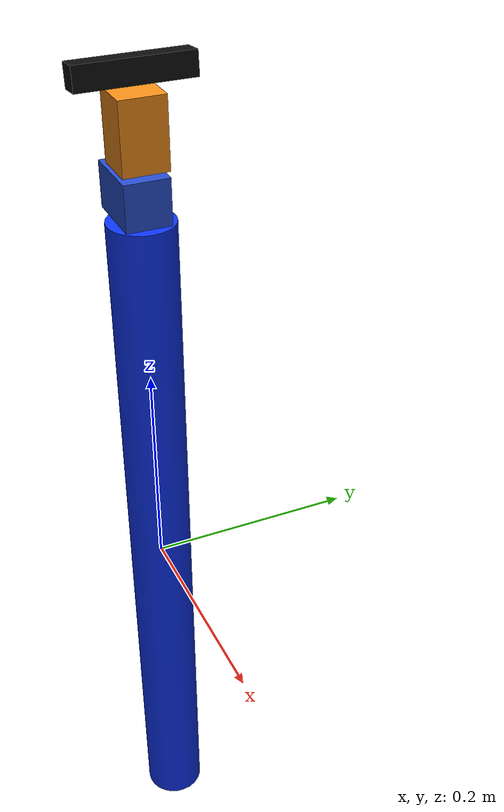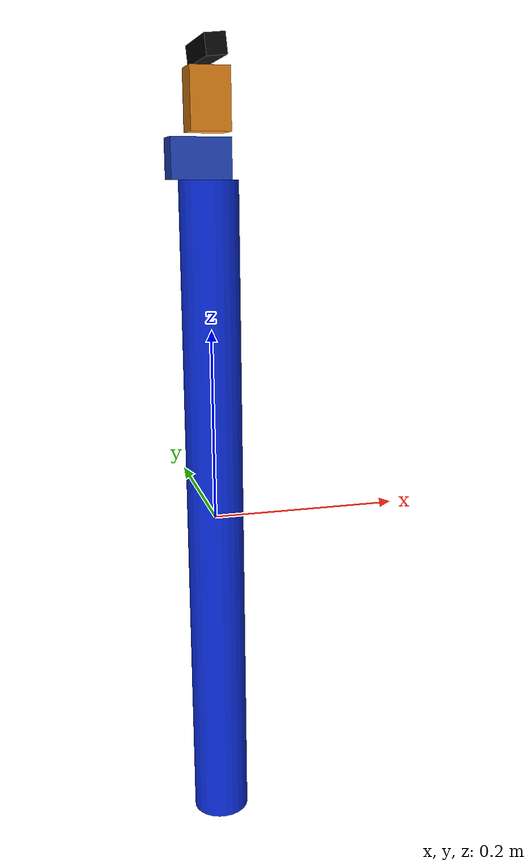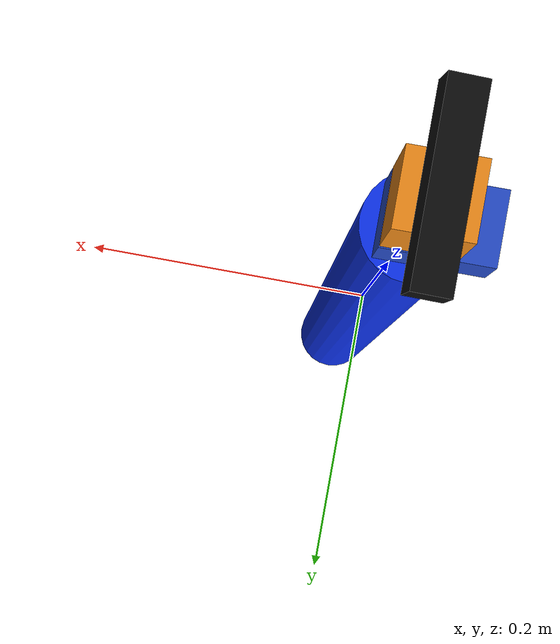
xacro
<?xml version="1.0"?>

<robot name="justina_upper" xmlns:xacro="http://www.ros.org/wiki/xacro">

  <xacro:property name="torso_radius" value="0.03"/>
  <xacro:property name="torso_height" value="0.7"/>
  <xacro:property name="torso_mass" value="1.0"/>
  <xacro:property name="torso_inertia_x" value="${1.0/12.0 * torso_mass * (3*torso_radius*torso_radius + torso_height*torso_height)}"/>
  <xacro:property name="torso_inertia_y" value="${1.0/12.0 * torso_mass * (3*torso_radius*torso_radius + torso_height*torso_height)}"/>
  <xacro:property name="torso_inertia_z" value="${1.0/2.0 * torso_mass * torso_radius * torso_radius}"/>

  <!-- Left Wheel -->
  <link name="torso_link">
    <visual>
      <origin xyz="0.0 0.0 0.0" rpy="0.0 0.0 0.0"/>
      <geometry>
        <cylinder radius="${torso_radius}" length="${torso_height}"/>
      </geometry>
      <material name="torso_material">
        <color rgba="0.05 0.2 0.95 1.0"/>
      </material>
    </visual>
    <collision>
      <origin xyz="0.0 0.0 0.0" rpy="0.0 0.0 0.0"/>
      <geometry>
        <cylinder radius="${torso_radius}" length="${torso_height}"/>
      </geometry>
    </collision>
    <inertial>
      <mass value="${torso_mass}"/>
      <inertia ixx="${torso_inertia_x}" ixy="0.0" ixz="0.0" iyy="${torso_inertia_y}" iyz="0" izz="${torso_inertia_z}"/>
      <origin xyz="0.0 0.0 0.0" rpy="0.0 0.0 0.0"/>
    </inertial>
  </link>

  <joint name="torso_head1" type="fixed">
    <origin xyz="0.0 0.0 0.34" rpy="0 0 0"/>
    <parent link="torso_link"/>
    <child link="head_link1"/>
  </joint>

  <link name="head_link1">
    <visual>
      <origin xyz= "-0.01 0 0.03" rpy="0 0 0"/>
      <geometry><box size="0.06 0.04 0.04"/></geometry>
      <material name="blue"/>
    </visual>
    <collision>
      <origin xyz= "-0.01 0 0.03" rpy="0 0 0"/>
      <geometry><box size="0.06 0.04 0.04"/></geometry>
    </collision>
    <inertial>
      <origin xyz="0.0 0 0.0" rpy = "0 0 0"/>
      <mass value = "0.15" />
      <inertia ixx = "0.00052" iyy = "0.00052" izz = "0.00004" ixy = "0" ixz = "0" iyz = "0" />
    </inertial>
  </link>

  <joint name="head_pan" type="revolute">
    <origin xyz="0.0 0 0.05" rpy="0 0 0" />
    <parent link="head_link1"/>
    <child link="head_link2"/>
    <axis xyz="0 0 1" />
    <dynamics damping ="0.1" />
    <limit effort="6.0" velocity="3.0" lower="-3.14" upper="3.14"/>
  </joint>

  <link name="head_link2">
    <visual>
      <origin xyz= "0.0 0 0.035" rpy="0 0 0"/>
      <geometry>
        <box size="0.04 0.04 0.06"/>
      </geometry>
      <material name="orange"/>
    </visual>
    <collision>
      <origin xyz= "0.0 0 0.035" rpy="0 0 0"/>
      <geometry>
        <box size = "0.04 0.04 0.06"/>
      </geometry>
    </collision>
    <inertial>
      <origin xyz="0.0 0 0.0" rpy = "0 0 0"/>
      <mass value = "0.15" />
      <inertia ixx = "0.00003125" iyy = "0.00003125" izz = "0.00003125" ixy = "0" ixz = "0" iyz = "0" />
    </inertial>
  </link>

  <joint name="head_tilt" type="revolute">
    <origin xyz="0.0 0 0.08" rpy="0 -0.1 0" />
    <parent link="head_link2"/>
    <child link="realsense_link"/>
    <axis xyz="0 1 0" />
    <dynamics damping ="0.1" />
    <limit effort="6.0" velocity="3.0" lower="-1.2" upper="1.0"/>
  </joint>

  <link name="realsense_link">
    <visual>
      <origin xyz="0.0 0.0 0.0" rpy="0.0 0.0 0.0"/>
      <geometry>
        <box size="0.02 0.1 0.02"/>
      </geometry>
      <material name="camera_material">
        <color rgba="0.05 0.05 0.05 1.0"/>
      </material>
    </visual>
    <collision>
      <origin xyz="0.0 0.0 0.0" rpy="0.0 0.0 0.0"/>
      <geometry>
        <box size="0.02 0.1 0.02"/>
      </geometry>
    </collision>
    <inertial>
      <mass value="0.4"/>
      <inertia ixx="0.001" ixy="0.0" ixz="0.0" iyy="0.001" iyz="0" izz="0.001"/>
      <origin xyz="0.0 0.0 0.0" rpy="0.0 0.0 0.0"/>
    </inertial>
  </link>

  <gazebo reference="realsense_link">
    <sensor name="camera" type="camera">
      <always_on>true</always_on>
      <visualize>true</visualize>
      <update_rate>30</update_rate>
      <topic>/camera/image_raw</topic>
      <gz_frame_id>camera_rgb_frame</gz_frame_id>
      <camera name="intel_realsense_r200">
        <camera_info_topic>camera/camera_info</camera_info_topic>
        <image>
          <width>1280</width>
          <height>720</height>
        </image>
        <noise>
          <type>gaussian</type>
          <mean>0.0</mean>
          <stddev>0.05</stddev>
        </noise>
      </camera>
    </sensor>
  </gazebo>

  <ros2_control name="GazeboSimSystem" type="system">
    <hardware>
      <plugin>gz_ros2_control/GazeboSimSystem</plugin>
    </hardware>
  </ros2_control>
  <ros2_control name="GazeboSimSystem" type="system">
    <hardware>
      <plugin>gz_ros2_control/GazeboSimSystem</plugin>
    </hardware>
    <joint name="head_pan"/>
    <joint name="head_tilt"/>
  </ros2_control>

  <gazebo>
    <plugin filename="gz_ros2_control-system" name="gz_ros2_control::GazeboSimROS2ControlPlugin">
      <parameters>$(find house_simul)/config/ros2control.yaml</parameters>
    </plugin>
  </gazebo>
</robot>
